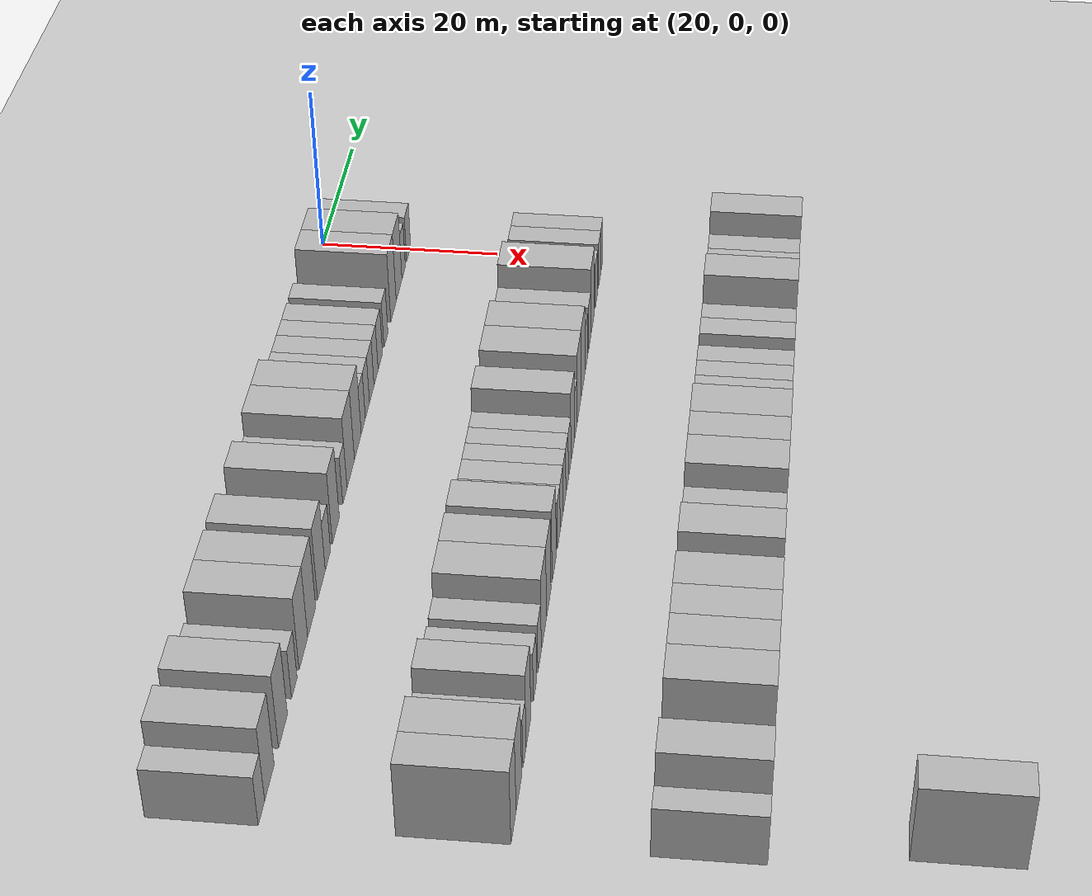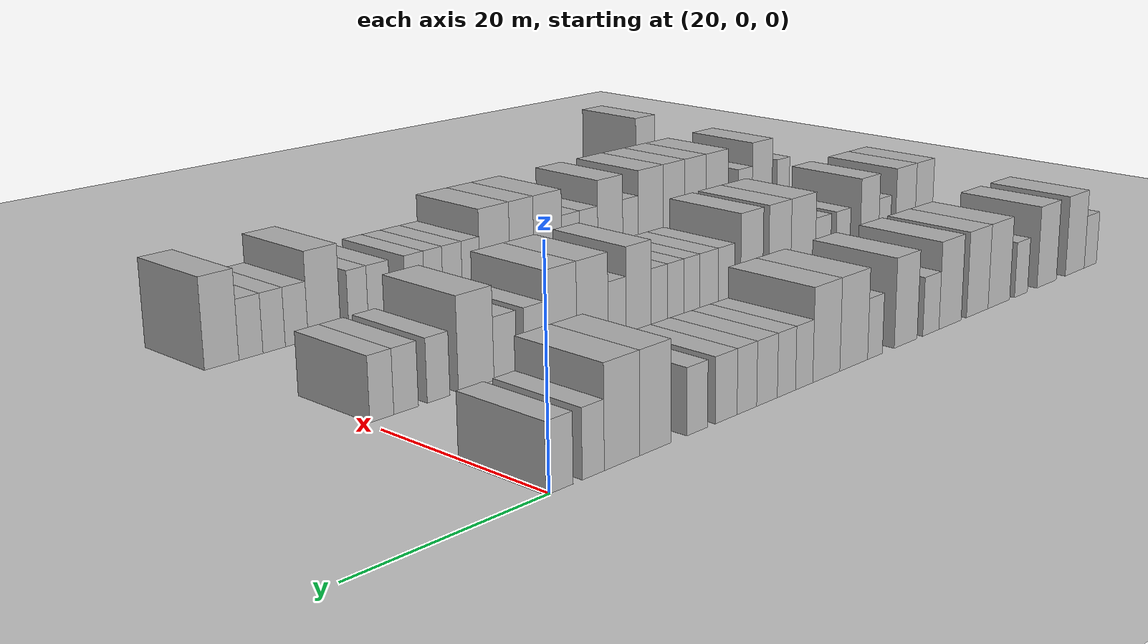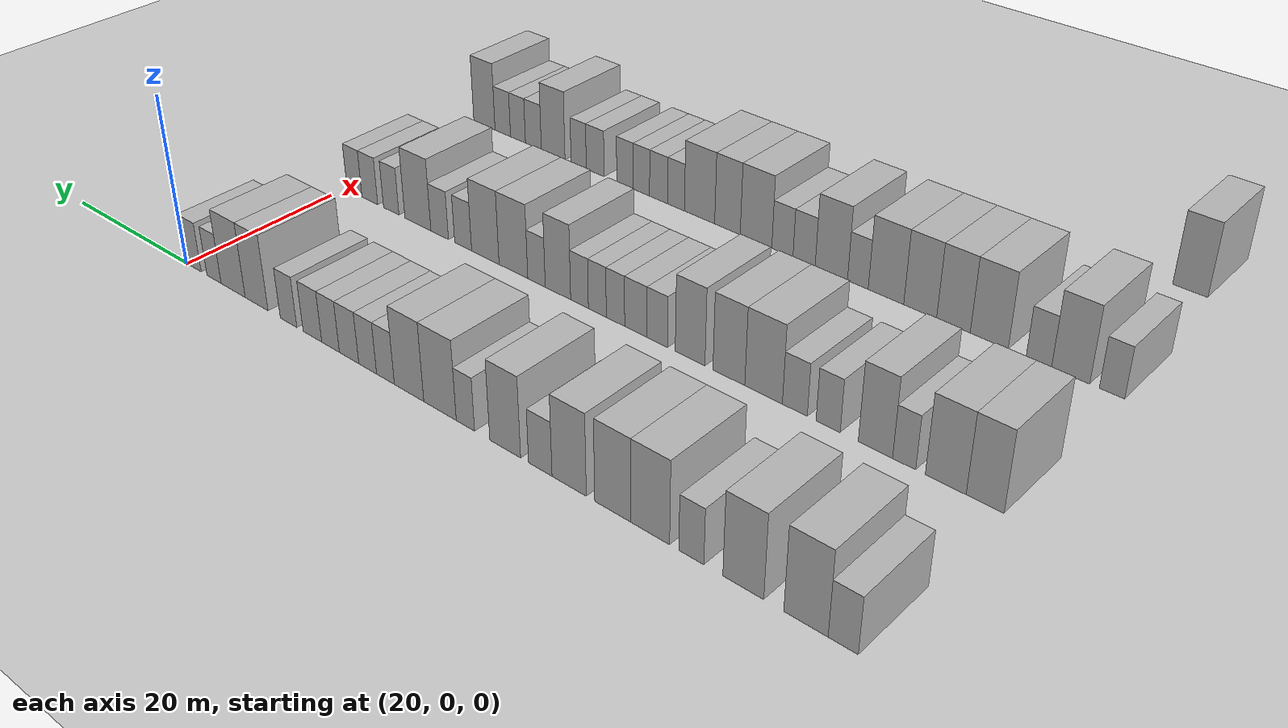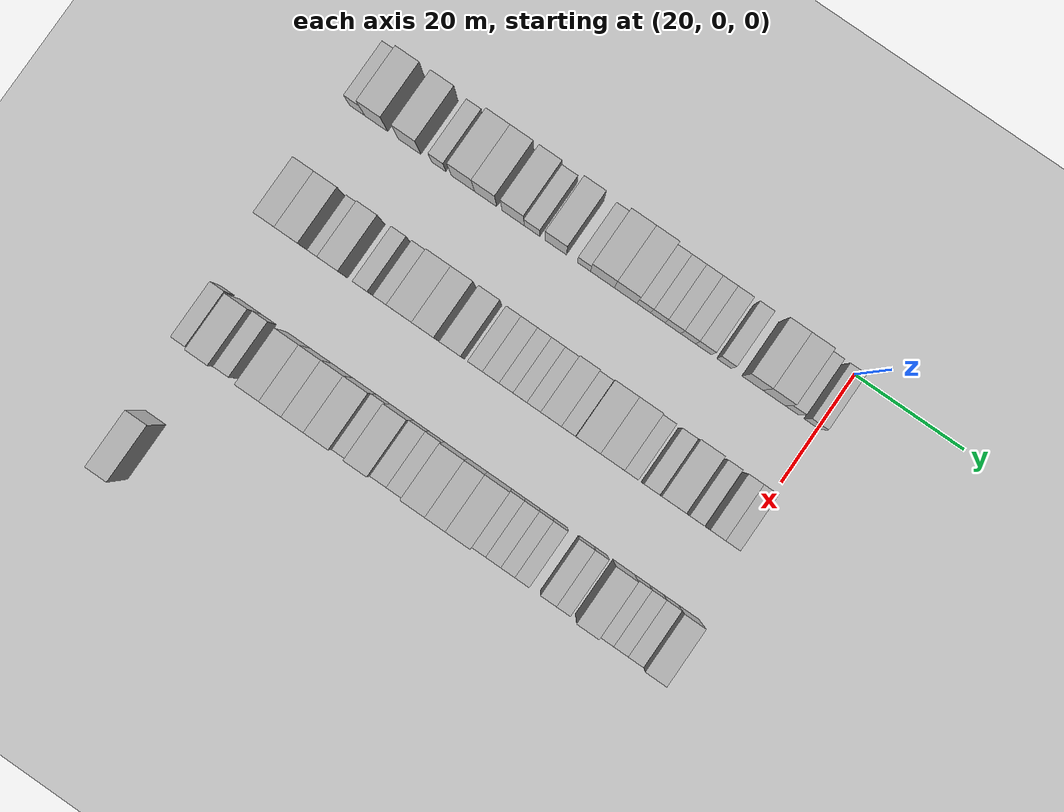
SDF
<sdf version="1.6">
 <world name="default">
  <include><name>ground_plane_1</name><uri>model://HANNAS_ground_plane</uri></include>
  <model name="building_71">
   <static>1</static>
   <pose>25.0000 -85.5744 0 0.000000 0.000000 0.000000</pose>
   <link name="link">
    <pose>0 0 3.00 0 0 0</pose>
    <collision name="collision"><geometry><box><size>10.0000 2.8453 6.0000</size></box></geometry></collision>
    <visual name="visual">
     <cast_shadows>0</cast_shadows>
     <geometry><box><size>10.0000 2.8453 6.0000</size></box></geometry>
     <material>
      <script>
       <uri>model://HANNAS_wall/materials/scripts</uri>
       <uri>model://HANNAS_wall/materials/textures</uri>
       <name>vrc/HANNAS_wall</name>
      </script>
     </material>
    </visual>
   </link>
  </model>
  <model name="building_72">
   <static>1</static>
   <pose>25.0000 -81.9981 0 0.000000 0.000000 0.000000</pose>
   <link name="link">
    <pose>0 0 4.50 0 0 0</pose>
    <collision name="collision"><geometry><box><size>10.0000 4.3073 9.0000</size></box></geometry></collision>
    <visual name="visual">
     <cast_shadows>0</cast_shadows>
     <geometry><box><size>10.0000 4.3073 9.0000</size></box></geometry>
     <material>
      <script>
       <uri>model://HANNAS_wall/materials/scripts</uri>
       <uri>model://HANNAS_wall/materials/textures</uri>
       <name>vrc/HANNAS_wall</name>
      </script>
     </material>
    </visual>
   </link>
  </model>
  <model name="building_73">
   <static>1</static>
   <pose>25.0000 -75.7421 0 0.000000 0.000000 0.000000</pose>
   <link name="link">
    <pose>0 0 4.50 0 0 0</pose>
    <collision name="collision"><geometry><box><size>10.0000 4.2046 9.0000</size></box></geometry></collision>
    <visual name="visual">
     <cast_shadows>0</cast_shadows>
     <geometry><box><size>10.0000 4.2046 9.0000</size></box></geometry>
     <material>
      <script>
       <uri>model://HANNAS_wall/materials/scripts</uri>
       <uri>model://HANNAS_wall/materials/textures</uri>
       <name>vrc/HANNAS_wall</name>
      </script>
     </material>
    </visual>
   </link>
  </model>
  <model name="building_74">
   <static>1</static>
   <pose>25.0000 -70.2906 0 0.000000 0.000000 0.000000</pose>
   <link name="link">
    <pose>0 0 3.00 0 0 0</pose>
    <collision name="collision"><geometry><box><size>10.0000 2.6985 6.0000</size></box></geometry></collision>
    <visual name="visual">
     <cast_shadows>0</cast_shadows>
     <geometry><box><size>10.0000 2.6985 6.0000</size></box></geometry>
     <material>
      <script>
       <uri>model://HANNAS_wall/materials/scripts</uri>
       <uri>model://HANNAS_wall/materials/textures</uri>
       <name>vrc/HANNAS_wall</name>
      </script>
     </material>
    </visual>
   </link>
  </model>
  <model name="building_75">
   <static>1</static>
   <pose>25.0000 -65.7738 0 0.000000 0.000000 0.000000</pose>
   <link name="link">
    <pose>0 0 4.50 0 0 0</pose>
    <collision name="collision"><geometry><box><size>10.0000 4.3351 9.0000</size></box></geometry></collision>
    <visual name="visual">
     <cast_shadows>0</cast_shadows>
     <geometry><box><size>10.0000 4.3351 9.0000</size></box></geometry>
     <material>
      <script>
       <uri>model://HANNAS_wall/materials/scripts</uri>
       <uri>model://HANNAS_wall/materials/textures</uri>
       <name>vrc/HANNAS_wall</name>
      </script>
     </material>
    </visual>
   </link>
  </model>
  <model name="building_76">
   <static>1</static>
   <pose>25.0000 -61.5246 0 0.000000 0.000000 0.000000</pose>
   <link name="link">
    <pose>0 0 4.50 0 0 0</pose>
    <collision name="collision"><geometry><box><size>10.0000 4.1635 9.0000</size></box></geometry></collision>
    <visual name="visual">
     <cast_shadows>0</cast_shadows>
     <geometry><box><size>10.0000 4.1635 9.0000</size></box></geometry>
     <material>
      <script>
       <uri>model://HANNAS_wall/materials/scripts</uri>
       <uri>model://HANNAS_wall/materials/textures</uri>
       <name>vrc/HANNAS_wall</name>
      </script>
     </material>
    </visual>
   </link>
  </model>
  <model name="building_77">
   <static>1</static>
   <pose>25.0000 -56.3787 0 0.000000 0.000000 0.000000</pose>
   <link name="link">
    <pose>0 0 4.50 0 0 0</pose>
    <collision name="collision"><geometry><box><size>10.0000 4.1282 9.0000</size></box></geometry></collision>
    <visual name="visual">
     <cast_shadows>0</cast_shadows>
     <geometry><box><size>10.0000 4.1282 9.0000</size></box></geometry>
     <material>
      <script>
       <uri>model://HANNAS_wall/materials/scripts</uri>
       <uri>model://HANNAS_wall/materials/textures</uri>
       <name>vrc/HANNAS_wall</name>
      </script>
     </material>
    </visual>
   </link>
  </model>
  <model name="building_78">
   <static>1</static>
   <pose>25.0000 -52.8615 0 0.000000 0.000000 0.000000</pose>
   <link name="link">
    <pose>0 0 3.00 0 0 0</pose>
    <collision name="collision"><geometry><box><size>10.0000 2.9062 6.0000</size></box></geometry></collision>
    <visual name="visual">
     <cast_shadows>0</cast_shadows>
     <geometry><box><size>10.0000 2.9062 6.0000</size></box></geometry>
     <material>
      <script>
       <uri>model://HANNAS_wall/materials/scripts</uri>
       <uri>model://HANNAS_wall/materials/textures</uri>
       <name>vrc/HANNAS_wall</name>
      </script>
     </material>
    </visual>
   </link>
  </model>
  <model name="building_79">
   <static>1</static>
   <pose>25.0000 -48.4329 0 0.000000 0.000000 0.000000</pose>
   <link name="link">
    <pose>0 0 4.50 0 0 0</pose>
    <collision name="collision"><geometry><box><size>10.0000 3.9510 9.0000</size></box></geometry></collision>
    <visual name="visual">
     <cast_shadows>0</cast_shadows>
     <geometry><box><size>10.0000 3.9510 9.0000</size></box></geometry>
     <material>
      <script>
       <uri>model://HANNAS_wall/materials/scripts</uri>
       <uri>model://HANNAS_wall/materials/textures</uri>
       <name>vrc/HANNAS_wall</name>
      </script>
     </material>
    </visual>
   </link>
  </model>
  <model name="building_80">
   <static>1</static>
   <pose>25.0000 -43.2373 0 0.000000 0.000000 0.000000</pose>
   <link name="link">
    <pose>0 0 3.00 0 0 0</pose>
    <collision name="collision"><geometry><box><size>10.0000 2.4401 6.0000</size></box></geometry></collision>
    <visual name="visual">
     <cast_shadows>0</cast_shadows>
     <geometry><box><size>10.0000 2.4401 6.0000</size></box></geometry>
     <material>
      <script>
       <uri>model://HANNAS_wall/materials/scripts</uri>
       <uri>model://HANNAS_wall/materials/textures</uri>
       <name>vrc/HANNAS_wall</name>
      </script>
     </material>
    </visual>
   </link>
  </model>
  <model name="building_81">
   <static>1</static>
   <pose>25.0000 -39.7944 0 0.000000 0.000000 0.000000</pose>
   <link name="link">
    <pose>0 0 4.50 0 0 0</pose>
    <collision name="collision"><geometry><box><size>10.0000 4.4456 9.0000</size></box></geometry></collision>
    <visual name="visual">
     <cast_shadows>0</cast_shadows>
     <geometry><box><size>10.0000 4.4456 9.0000</size></box></geometry>
     <material>
      <script>
       <uri>model://HANNAS_wall/materials/scripts</uri>
       <uri>model://HANNAS_wall/materials/textures</uri>
       <name>vrc/HANNAS_wall</name>
      </script>
     </material>
    </visual>
   </link>
  </model>
  <model name="building_82">
   <static>1</static>
   <pose>25.0000 -35.4935 0 0.000000 0.000000 0.000000</pose>
   <link name="link">
    <pose>0 0 4.50 0 0 0</pose>
    <collision name="collision"><geometry><box><size>10.0000 4.1563 9.0000</size></box></geometry></collision>
    <visual name="visual">
     <cast_shadows>0</cast_shadows>
     <geometry><box><size>10.0000 4.1563 9.0000</size></box></geometry>
     <material>
      <script>
       <uri>model://HANNAS_wall/materials/scripts</uri>
       <uri>model://HANNAS_wall/materials/textures</uri>
       <name>vrc/HANNAS_wall</name>
      </script>
     </material>
    </visual>
   </link>
  </model>
  <model name="building_83">
   <static>1</static>
   <pose>25.0000 -32.1264 0 0.000000 0.000000 0.000000</pose>
   <link name="link">
    <pose>0 0 3.00 0 0 0</pose>
    <collision name="collision"><geometry><box><size>10.0000 2.5778 6.0000</size></box></geometry></collision>
    <visual name="visual">
     <cast_shadows>0</cast_shadows>
     <geometry><box><size>10.0000 2.5778 6.0000</size></box></geometry>
     <material>
      <script>
       <uri>model://HANNAS_wall/materials/scripts</uri>
       <uri>model://HANNAS_wall/materials/textures</uri>
       <name>vrc/HANNAS_wall</name>
      </script>
     </material>
    </visual>
   </link>
  </model>
  <model name="building_84">
   <static>1</static>
   <pose>25.0000 -29.5190 0 0.000000 0.000000 0.000000</pose>
   <link name="link">
    <pose>0 0 3.00 0 0 0</pose>
    <collision name="collision"><geometry><box><size>10.0000 2.6370 6.0000</size></box></geometry></collision>
    <visual name="visual">
     <cast_shadows>0</cast_shadows>
     <geometry><box><size>10.0000 2.6370 6.0000</size></box></geometry>
     <material>
      <script>
       <uri>model://HANNAS_wall/materials/scripts</uri>
       <uri>model://HANNAS_wall/materials/textures</uri>
       <name>vrc/HANNAS_wall</name>
      </script>
     </material>
    </visual>
   </link>
  </model>
  <model name="building_85">
   <static>1</static>
   <pose>25.0000 -26.7418 0 0.000000 0.000000 0.000000</pose>
   <link name="link">
    <pose>0 0 3.00 0 0 0</pose>
    <collision name="collision"><geometry><box><size>10.0000 2.9174 6.0000</size></box></geometry></collision>
    <visual name="visual">
     <cast_shadows>0</cast_shadows>
     <geometry><box><size>10.0000 2.9174 6.0000</size></box></geometry>
     <material>
      <script>
       <uri>model://HANNAS_wall/materials/scripts</uri>
       <uri>model://HANNAS_wall/materials/textures</uri>
       <name>vrc/HANNAS_wall</name>
      </script>
     </material>
    </visual>
   </link>
  </model>
  <model name="building_86">
   <static>1</static>
   <pose>25.0000 -23.9332 0 0.000000 0.000000 0.000000</pose>
   <link name="link">
    <pose>0 0 3.00 0 0 0</pose>
    <collision name="collision"><geometry><box><size>10.0000 2.6997 6.0000</size></box></geometry></collision>
    <visual name="visual">
     <cast_shadows>0</cast_shadows>
     <geometry><box><size>10.0000 2.6997 6.0000</size></box></geometry>
     <material>
      <script>
       <uri>model://HANNAS_wall/materials/scripts</uri>
       <uri>model://HANNAS_wall/materials/textures</uri>
       <name>vrc/HANNAS_wall</name>
      </script>
     </material>
    </visual>
   </link>
  </model>
  <model name="building_87">
   <static>1</static>
   <pose>25.0000 -21.1210 0 0.000000 0.000000 0.000000</pose>
   <link name="link">
    <pose>0 0 3.00 0 0 0</pose>
    <collision name="collision"><geometry><box><size>10.0000 2.9246 6.0000</size></box></geometry></collision>
    <visual name="visual">
     <cast_shadows>0</cast_shadows>
     <geometry><box><size>10.0000 2.9246 6.0000</size></box></geometry>
     <material>
      <script>
       <uri>model://HANNAS_wall/materials/scripts</uri>
       <uri>model://HANNAS_wall/materials/textures</uri>
       <name>vrc/HANNAS_wall</name>
      </script>
     </material>
    </visual>
   </link>
  </model>
  <model name="building_88">
   <static>1</static>
   <pose>25.0000 -17.3286 0 0.000000 0.000000 0.000000</pose>
   <link name="link">
    <pose>0 0 3.00 0 0 0</pose>
    <collision name="collision"><geometry><box><size>10.0000 2.6602 6.0000</size></box></geometry></collision>
    <visual name="visual">
     <cast_shadows>0</cast_shadows>
     <geometry><box><size>10.0000 2.6602 6.0000</size></box></geometry>
     <material>
      <script>
       <uri>model://HANNAS_wall/materials/scripts</uri>
       <uri>model://HANNAS_wall/materials/textures</uri>
       <name>vrc/HANNAS_wall</name>
      </script>
     </material>
    </visual>
   </link>
  </model>
  <model name="building_89">
   <static>1</static>
   <pose>25.0000 -12.0951 0 0.000000 0.000000 0.000000</pose>
   <link name="link">
    <pose>0 0 4.50 0 0 0</pose>
    <collision name="collision"><geometry><box><size>10.0000 3.8069 9.0000</size></box></geometry></collision>
    <visual name="visual">
     <cast_shadows>0</cast_shadows>
     <geometry><box><size>10.0000 3.8069 9.0000</size></box></geometry>
     <material>
      <script>
       <uri>model://HANNAS_wall/materials/scripts</uri>
       <uri>model://HANNAS_wall/materials/textures</uri>
       <name>vrc/HANNAS_wall</name>
      </script>
     </material>
    </visual>
   </link>
  </model>
  <model name="building_90">
   <static>1</static>
   <pose>25.0000 -8.1276 0 0.000000 0.000000 0.000000</pose>
   <link name="link">
    <pose>0 0 4.50 0 0 0</pose>
    <collision name="collision"><geometry><box><size>10.0000 4.1280 9.0000</size></box></geometry></collision>
    <visual name="visual">
     <cast_shadows>0</cast_shadows>
     <geometry><box><size>10.0000 4.1280 9.0000</size></box></geometry>
     <material>
      <script>
       <uri>model://HANNAS_wall/materials/scripts</uri>
       <uri>model://HANNAS_wall/materials/textures</uri>
       <name>vrc/HANNAS_wall</name>
      </script>
     </material>
    </visual>
   </link>
  </model>
  <model name="building_91">
   <static>1</static>
   <pose>25.0000 -4.8198 0 0.000000 0.000000 0.000000</pose>
   <link name="link">
    <pose>0 0 3.00 0 0 0</pose>
    <collision name="collision"><geometry><box><size>10.0000 2.4877 6.0000</size></box></geometry></collision>
    <visual name="visual">
     <cast_shadows>0</cast_shadows>
     <geometry><box><size>10.0000 2.4877 6.0000</size></box></geometry>
     <material>
      <script>
       <uri>model://HANNAS_wall/materials/scripts</uri>
       <uri>model://HANNAS_wall/materials/textures</uri>
       <name>vrc/HANNAS_wall</name>
      </script>
     </material>
    </visual>
   </link>
  </model>
  <model name="building_92">
   <static>1</static>
   <pose>25.0000 -1.1190 0 0.000000 0.000000 0.000000</pose>
   <link name="link">
    <pose>0 0 3.00 0 0 0</pose>
    <collision name="collision"><geometry><box><size>10.0000 2.9141 6.0000</size></box></geometry></collision>
    <visual name="visual">
     <cast_shadows>0</cast_shadows>
     <geometry><box><size>10.0000 2.9141 6.0000</size></box></geometry>
     <material>
      <script>
       <uri>model://HANNAS_wall/materials/scripts</uri>
       <uri>model://HANNAS_wall/materials/textures</uri>
       <name>vrc/HANNAS_wall</name>
      </script>
     </material>
    </visual>
   </link>
  </model>
  <model name="building_261">
   <static>1</static>
   <pose>47.0000 -85.1181 0 0.000000 0.000000 0.000000</pose>
   <link name="link">
    <pose>0 0 4.50 0 0 0</pose>
    <collision name="collision"><geometry><box><size>10.0000 3.7637 9.0000</size></box></geometry></collision>
    <visual name="visual">
     <cast_shadows>0</cast_shadows>
     <geometry><box><size>10.0000 3.7637 9.0000</size></box></geometry>
     <material>
      <script>
       <uri>model://HANNAS_wall/materials/scripts</uri>
       <uri>model://HANNAS_wall/materials/textures</uri>
       <name>vrc/HANNAS_wall</name>
      </script>
     </material>
    </visual>
   </link>
  </model>
  <model name="building_262">
   <static>1</static>
   <pose>47.0000 -81.1468 0 0.000000 0.000000 0.000000</pose>
   <link name="link">
    <pose>0 0 4.50 0 0 0</pose>
    <collision name="collision"><geometry><box><size>10.0000 4.1789 9.0000</size></box></geometry></collision>
    <visual name="visual">
     <cast_shadows>0</cast_shadows>
     <geometry><box><size>10.0000 4.1789 9.0000</size></box></geometry>
     <material>
      <script>
       <uri>model://HANNAS_wall/materials/scripts</uri>
       <uri>model://HANNAS_wall/materials/textures</uri>
       <name>vrc/HANNAS_wall</name>
      </script>
     </material>
    </visual>
   </link>
  </model>
  <model name="building_263">
   <static>1</static>
   <pose>47.0000 -76.8328 0 0.000000 0.000000 0.000000</pose>
   <link name="link">
    <pose>0 0 3.00 0 0 0</pose>
    <collision name="collision"><geometry><box><size>10.0000 2.4491 6.0000</size></box></geometry></collision>
    <visual name="visual">
     <cast_shadows>0</cast_shadows>
     <geometry><box><size>10.0000 2.4491 6.0000</size></box></geometry>
     <material>
      <script>
       <uri>model://HANNAS_wall/materials/scripts</uri>
       <uri>model://HANNAS_wall/materials/textures</uri>
       <name>vrc/HANNAS_wall</name>
      </script>
     </material>
    </visual>
   </link>
  </model>
  <model name="building_264">
   <static>1</static>
   <pose>47.0000 -73.7501 0 0.000000 0.000000 0.000000</pose>
   <link name="link">
    <pose>0 0 4.50 0 0 0</pose>
    <collision name="collision"><geometry><box><size>10.0000 3.7163 9.0000</size></box></geometry></collision>
    <visual name="visual">
     <cast_shadows>0</cast_shadows>
     <geometry><box><size>10.0000 3.7163 9.0000</size></box></geometry>
     <material>
      <script>
       <uri>model://HANNAS_wall/materials/scripts</uri>
       <uri>model://HANNAS_wall/materials/textures</uri>
       <name>vrc/HANNAS_wall</name>
      </script>
     </material>
    </visual>
   </link>
  </model>
  <model name="building_265">
   <static>1</static>
   <pose>47.0000 -68.5322 0 0.000000 0.000000 0.000000</pose>
   <link name="link">
    <pose>0 0 3.00 0 0 0</pose>
    <collision name="collision"><geometry><box><size>10.0000 2.7195 6.0000</size></box></geometry></collision>
    <visual name="visual">
     <cast_shadows>0</cast_shadows>
     <geometry><box><size>10.0000 2.7195 6.0000</size></box></geometry>
     <material>
      <script>
       <uri>model://HANNAS_wall/materials/scripts</uri>
       <uri>model://HANNAS_wall/materials/textures</uri>
       <name>vrc/HANNAS_wall</name>
      </script>
     </material>
    </visual>
   </link>
  </model>
  <model name="building_266">
   <static>1</static>
   <pose>47.0000 -64.7271 0 0.000000 0.000000 0.000000</pose>
   <link name="link">
    <pose>0 0 3.00 0 0 0</pose>
    <collision name="collision"><geometry><box><size>10.0000 2.8907 6.0000</size></box></geometry></collision>
    <visual name="visual">
     <cast_shadows>0</cast_shadows>
     <geometry><box><size>10.0000 2.8907 6.0000</size></box></geometry>
     <material>
      <script>
       <uri>model://HANNAS_wall/materials/scripts</uri>
       <uri>model://HANNAS_wall/materials/textures</uri>
       <name>vrc/HANNAS_wall</name>
      </script>
     </material>
    </visual>
   </link>
  </model>
  <model name="building_267">
   <static>1</static>
   <pose>47.0000 -61.0425 0 0.000000 0.000000 0.000000</pose>
   <link name="link">
    <pose>0 0 4.50 0 0 0</pose>
    <collision name="collision"><geometry><box><size>10.0000 4.4786 9.0000</size></box></geometry></collision>
    <visual name="visual">
     <cast_shadows>0</cast_shadows>
     <geometry><box><size>10.0000 4.4786 9.0000</size></box></geometry>
     <material>
      <script>
       <uri>model://HANNAS_wall/materials/scripts</uri>
       <uri>model://HANNAS_wall/materials/textures</uri>
       <name>vrc/HANNAS_wall</name>
      </script>
     </material>
    </visual>
   </link>
  </model>
  <model name="building_268">
   <static>1</static>
   <pose>47.0000 -56.8417 0 0.000000 0.000000 0.000000</pose>
   <link name="link">
    <pose>0 0 4.50 0 0 0</pose>
    <collision name="collision"><geometry><box><size>10.0000 3.9229 9.0000</size></box></geometry></collision>
    <visual name="visual">
     <cast_shadows>0</cast_shadows>
     <geometry><box><size>10.0000 3.9229 9.0000</size></box></geometry>
     <material>
      <script>
       <uri>model://HANNAS_wall/materials/scripts</uri>
       <uri>model://HANNAS_wall/materials/textures</uri>
       <name>vrc/HANNAS_wall</name>
      </script>
     </material>
    </visual>
   </link>
  </model>
  <model name="building_269">
   <static>1</static>
   <pose>47.0000 -51.9926 0 0.000000 0.000000 0.000000</pose>
   <link name="link">
    <pose>0 0 4.50 0 0 0</pose>
    <collision name="collision"><geometry><box><size>10.0000 3.7755 9.0000</size></box></geometry></collision>
    <visual name="visual">
     <cast_shadows>0</cast_shadows>
     <geometry><box><size>10.0000 3.7755 9.0000</size></box></geometry>
     <material>
      <script>
       <uri>model://HANNAS_wall/materials/scripts</uri>
       <uri>model://HANNAS_wall/materials/textures</uri>
       <name>vrc/HANNAS_wall</name>
      </script>
     </material>
    </visual>
   </link>
  </model>
  <model name="building_270">
   <static>1</static>
   <pose>47.0000 -47.7576 0 0.000000 0.000000 0.000000</pose>
   <link name="link">
    <pose>0 0 3.00 0 0 0</pose>
    <collision name="collision"><geometry><box><size>10.0000 2.6945 6.0000</size></box></geometry></collision>
    <visual name="visual">
     <cast_shadows>0</cast_shadows>
     <geometry><box><size>10.0000 2.6945 6.0000</size></box></geometry>
     <material>
      <script>
       <uri>model://HANNAS_wall/materials/scripts</uri>
       <uri>model://HANNAS_wall/materials/textures</uri>
       <name>vrc/HANNAS_wall</name>
      </script>
     </material>
    </visual>
   </link>
  </model>
  <model name="building_271">
   <static>1</static>
   <pose>47.0000 -44.9195 0 0.000000 0.000000 0.000000</pose>
   <link name="link">
    <pose>0 0 3.00 0 0 0</pose>
    <collision name="collision"><geometry><box><size>10.0000 2.9817 6.0000</size></box></geometry></collision>
    <visual name="visual">
     <cast_shadows>0</cast_shadows>
     <geometry><box><size>10.0000 2.9817 6.0000</size></box></geometry>
     <material>
      <script>
       <uri>model://HANNAS_wall/materials/scripts</uri>
       <uri>model://HANNAS_wall/materials/textures</uri>
       <name>vrc/HANNAS_wall</name>
      </script>
     </material>
    </visual>
   </link>
  </model>
  <model name="building_272">
   <static>1</static>
   <pose>47.0000 -42.1758 0 0.000000 0.000000 0.000000</pose>
   <link name="link">
    <pose>0 0 3.00 0 0 0</pose>
    <collision name="collision"><geometry><box><size>10.0000 2.5056 6.0000</size></box></geometry></collision>
    <visual name="visual">
     <cast_shadows>0</cast_shadows>
     <geometry><box><size>10.0000 2.5056 6.0000</size></box></geometry>
     <material>
      <script>
       <uri>model://HANNAS_wall/materials/scripts</uri>
       <uri>model://HANNAS_wall/materials/textures</uri>
       <name>vrc/HANNAS_wall</name>
      </script>
     </material>
    </visual>
   </link>
  </model>
  <model name="building_273">
   <static>1</static>
   <pose>47.0000 -39.6827 0 0.000000 0.000000 0.000000</pose>
   <link name="link">
    <pose>0 0 3.00 0 0 0</pose>
    <collision name="collision"><geometry><box><size>10.0000 2.4806 6.0000</size></box></geometry></collision>
    <visual name="visual">
     <cast_shadows>0</cast_shadows>
     <geometry><box><size>10.0000 2.4806 6.0000</size></box></geometry>
     <material>
      <script>
       <uri>model://HANNAS_wall/materials/scripts</uri>
       <uri>model://HANNAS_wall/materials/textures</uri>
       <name>vrc/HANNAS_wall</name>
      </script>
     </material>
    </visual>
   </link>
  </model>
  <model name="building_274">
   <static>1</static>
   <pose>47.0000 -37.1938 0 0.000000 0.000000 0.000000</pose>
   <link name="link">
    <pose>0 0 3.00 0 0 0</pose>
    <collision name="collision"><geometry><box><size>10.0000 2.4974 6.0000</size></box></geometry></collision>
    <visual name="visual">
     <cast_shadows>0</cast_shadows>
     <geometry><box><size>10.0000 2.4974 6.0000</size></box></geometry>
     <material>
      <script>
       <uri>model://HANNAS_wall/materials/scripts</uri>
       <uri>model://HANNAS_wall/materials/textures</uri>
       <name>vrc/HANNAS_wall</name>
      </script>
     </material>
    </visual>
   </link>
  </model>
  <model name="building_275">
   <static>1</static>
   <pose>47.0000 -34.1157 0 0.000000 0.000000 0.000000</pose>
   <link name="link">
    <pose>0 0 4.50 0 0 0</pose>
    <collision name="collision"><geometry><box><size>10.0000 3.6586 9.0000</size></box></geometry></collision>
    <visual name="visual">
     <cast_shadows>0</cast_shadows>
     <geometry><box><size>10.0000 3.6586 9.0000</size></box></geometry>
     <material>
      <script>
       <uri>model://HANNAS_wall/materials/scripts</uri>
       <uri>model://HANNAS_wall/materials/textures</uri>
       <name>vrc/HANNAS_wall</name>
      </script>
     </material>
    </visual>
   </link>
  </model>
  <model name="building_276">
   <static>1</static>
   <pose>47.0000 -31.0033 0 0.000000 0.000000 0.000000</pose>
   <link name="link">
    <pose>0 0 3.00 0 0 0</pose>
    <collision name="collision"><geometry><box><size>10.0000 2.5662 6.0000</size></box></geometry></collision>
    <visual name="visual">
     <cast_shadows>0</cast_shadows>
     <geometry><box><size>10.0000 2.5662 6.0000</size></box></geometry>
     <material>
      <script>
       <uri>model://HANNAS_wall/materials/scripts</uri>
       <uri>model://HANNAS_wall/materials/textures</uri>
       <name>vrc/HANNAS_wall</name>
      </script>
     </material>
    </visual>
   </link>
  </model>
  <model name="building_277">
   <static>1</static>
   <pose>47.0000 -27.5591 0 0.000000 0.000000 0.000000</pose>
   <link name="link">
    <pose>0 0 4.50 0 0 0</pose>
    <collision name="collision"><geometry><box><size>10.0000 4.3224 9.0000</size></box></geometry></collision>
    <visual name="visual">
     <cast_shadows>0</cast_shadows>
     <geometry><box><size>10.0000 4.3224 9.0000</size></box></geometry>
     <material>
      <script>
       <uri>model://HANNAS_wall/materials/scripts</uri>
       <uri>model://HANNAS_wall/materials/textures</uri>
       <name>vrc/HANNAS_wall</name>
      </script>
     </material>
    </visual>
   </link>
  </model>
  <model name="building_278">
   <static>1</static>
   <pose>47.0000 -23.2790 0 0.000000 0.000000 0.000000</pose>
   <link name="link">
    <pose>0 0 4.50 0 0 0</pose>
    <collision name="collision"><geometry><box><size>10.0000 4.2378 9.0000</size></box></geometry></collision>
    <visual name="visual">
     <cast_shadows>0</cast_shadows>
     <geometry><box><size>10.0000 4.2378 9.0000</size></box></geometry>
     <material>
      <script>
       <uri>model://HANNAS_wall/materials/scripts</uri>
       <uri>model://HANNAS_wall/materials/textures</uri>
       <name>vrc/HANNAS_wall</name>
      </script>
     </material>
    </visual>
   </link>
  </model>
  <model name="building_279">
   <static>1</static>
   <pose>47.0000 -19.8201 0 0.000000 0.000000 0.000000</pose>
   <link name="link">
    <pose>0 0 3.00 0 0 0</pose>
    <collision name="collision"><geometry><box><size>10.0000 2.6801 6.0000</size></box></geometry></collision>
    <visual name="visual">
     <cast_shadows>0</cast_shadows>
     <geometry><box><size>10.0000 2.6801 6.0000</size></box></geometry>
     <material>
      <script>
       <uri>model://HANNAS_wall/materials/scripts</uri>
       <uri>model://HANNAS_wall/materials/textures</uri>
       <name>vrc/HANNAS_wall</name>
      </script>
     </material>
    </visual>
   </link>
  </model>
  <model name="building_280">
   <static>1</static>
   <pose>47.0000 -16.0602 0 0.000000 0.000000 0.000000</pose>
   <link name="link">
    <pose>0 0 3.00 0 0 0</pose>
    <collision name="collision"><geometry><box><size>10.0000 2.8396 6.0000</size></box></geometry></collision>
    <visual name="visual">
     <cast_shadows>0</cast_shadows>
     <geometry><box><size>10.0000 2.8396 6.0000</size></box></geometry>
     <material>
      <script>
       <uri>model://HANNAS_wall/materials/scripts</uri>
       <uri>model://HANNAS_wall/materials/textures</uri>
       <name>vrc/HANNAS_wall</name>
      </script>
     </material>
    </visual>
   </link>
  </model>
  <model name="building_281">
   <static>1</static>
   <pose>47.0000 -12.4890 0 0.000000 0.000000 0.000000</pose>
   <link name="link">
    <pose>0 0 4.50 0 0 0</pose>
    <collision name="collision"><geometry><box><size>10.0000 4.3029 9.0000</size></box></geometry></collision>
    <visual name="visual">
     <cast_shadows>0</cast_shadows>
     <geometry><box><size>10.0000 4.3029 9.0000</size></box></geometry>
     <material>
      <script>
       <uri>model://HANNAS_wall/materials/scripts</uri>
       <uri>model://HANNAS_wall/materials/textures</uri>
       <name>vrc/HANNAS_wall</name>
      </script>
     </material>
    </visual>
   </link>
  </model>
  <model name="building_282">
   <static>1</static>
   <pose>47.0000 -8.0232 0 0.000000 0.000000 0.000000</pose>
   <link name="link">
    <pose>0 0 3.00 0 0 0</pose>
    <collision name="collision"><geometry><box><size>10.0000 2.6288 6.0000</size></box></geometry></collision>
    <visual name="visual">
     <cast_shadows>0</cast_shadows>
     <geometry><box><size>10.0000 2.6288 6.0000</size></box></geometry>
     <material>
      <script>
       <uri>model://HANNAS_wall/materials/scripts</uri>
       <uri>model://HANNAS_wall/materials/textures</uri>
       <name>vrc/HANNAS_wall</name>
      </script>
     </material>
    </visual>
   </link>
  </model>
  <model name="building_283">
   <static>1</static>
   <pose>47.0000 -4.3360 0 0.000000 0.000000 0.000000</pose>
   <link name="link">
    <pose>0 0 3.00 0 0 0</pose>
    <collision name="collision"><geometry><box><size>10.0000 2.7457 6.0000</size></box></geometry></collision>
    <visual name="visual">
     <cast_shadows>0</cast_shadows>
     <geometry><box><size>10.0000 2.7457 6.0000</size></box></geometry>
     <material>
      <script>
       <uri>model://HANNAS_wall/materials/scripts</uri>
       <uri>model://HANNAS_wall/materials/textures</uri>
       <name>vrc/HANNAS_wall</name>
      </script>
     </material>
    </visual>
   </link>
  </model>
  <model name="building_284">
   <static>1</static>
   <pose>47.0000 -1.6566 0 0.000000 0.000000 0.000000</pose>
   <link name="link">
    <pose>0 0 3.00 0 0 0</pose>
    <collision name="collision"><geometry><box><size>10.0000 2.6131 6.0000</size></box></geometry></collision>
    <visual name="visual">
     <cast_shadows>0</cast_shadows>
     <geometry><box><size>10.0000 2.6131 6.0000</size></box></geometry>
     <material>
      <script>
       <uri>model://HANNAS_wall/materials/scripts</uri>
       <uri>model://HANNAS_wall/materials/textures</uri>
       <name>vrc/HANNAS_wall</name>
      </script>
     </material>
    </visual>
   </link>
  </model>
  <model name="building_460">
   <static>1</static>
   <pose>69.0000 -85.8655 0 0.000000 0.000000 0.000000</pose>
   <link name="link">
    <pose>0 0 3.00 0 0 0</pose>
    <collision name="collision"><geometry><box><size>10.0000 2.6260 6.0000</size></box></geometry></collision>
    <visual name="visual">
     <cast_shadows>0</cast_shadows>
     <geometry><box><size>10.0000 2.6260 6.0000</size></box></geometry>
     <material>
      <script>
       <uri>model://HANNAS_wall/materials/scripts</uri>
       <uri>model://HANNAS_wall/materials/textures</uri>
       <name>vrc/HANNAS_wall</name>
      </script>
     </material>
    </visual>
   </link>
  </model>
  <model name="building_461">
   <static>1</static>
   <pose>69.0000 -81.5101 0 0.000000 0.000000 0.000000</pose>
   <link name="link">
    <pose>0 0 4.50 0 0 0</pose>
    <collision name="collision"><geometry><box><size>10.0000 4.0848 9.0000</size></box></geometry></collision>
    <visual name="visual">
     <cast_shadows>0</cast_shadows>
     <geometry><box><size>10.0000 4.0848 9.0000</size></box></geometry>
     <material>
      <script>
       <uri>model://HANNAS_wall/materials/scripts</uri>
       <uri>model://HANNAS_wall/materials/textures</uri>
       <name>vrc/HANNAS_wall</name>
      </script>
     </material>
    </visual>
   </link>
  </model>
  <model name="building_462">
   <static>1</static>
   <pose>69.0000 -78.0763 0 0.000000 0.000000 0.000000</pose>
   <link name="link">
    <pose>0 0 3.00 0 0 0</pose>
    <collision name="collision"><geometry><box><size>10.0000 2.7828 6.0000</size></box></geometry></collision>
    <visual name="visual">
     <cast_shadows>0</cast_shadows>
     <geometry><box><size>10.0000 2.7828 6.0000</size></box></geometry>
     <material>
      <script>
       <uri>model://HANNAS_wall/materials/scripts</uri>
       <uri>model://HANNAS_wall/materials/textures</uri>
       <name>vrc/HANNAS_wall</name>
      </script>
     </material>
    </visual>
   </link>
  </model>
  <model name="building_463">
   <static>1</static>
   <pose>69.0000 -72.5223 0 0.000000 0.000000 0.000000</pose>
   <link name="link">
    <pose>0 0 4.50 0 0 0</pose>
    <collision name="collision"><geometry><box><size>10.0000 4.3252 9.0000</size></box></geometry></collision>
    <visual name="visual">
     <cast_shadows>0</cast_shadows>
     <geometry><box><size>10.0000 4.3252 9.0000</size></box></geometry>
     <material>
      <script>
       <uri>model://HANNAS_wall/materials/scripts</uri>
       <uri>model://HANNAS_wall/materials/textures</uri>
       <name>vrc/HANNAS_wall</name>
      </script>
     </material>
    </visual>
   </link>
  </model>
  <model name="building_464">
   <static>1</static>
   <pose>69.0000 -68.3876 0 0.000000 0.000000 0.000000</pose>
   <link name="link">
    <pose>0 0 4.50 0 0 0</pose>
    <collision name="collision"><geometry><box><size>10.0000 3.9441 9.0000</size></box></geometry></collision>
    <visual name="visual">
     <cast_shadows>0</cast_shadows>
     <geometry><box><size>10.0000 3.9441 9.0000</size></box></geometry>
     <material>
      <script>
       <uri>model://HANNAS_wall/materials/scripts</uri>
       <uri>model://HANNAS_wall/materials/textures</uri>
       <name>vrc/HANNAS_wall</name>
      </script>
     </material>
    </visual>
   </link>
  </model>
  <model name="building_465">
   <static>1</static>
   <pose>69.0000 -64.4347 0 0.000000 0.000000 0.000000</pose>
   <link name="link">
    <pose>0 0 4.50 0 0 0</pose>
    <collision name="collision"><geometry><box><size>10.0000 3.9617 9.0000</size></box></geometry></collision>
    <visual name="visual">
     <cast_shadows>0</cast_shadows>
     <geometry><box><size>10.0000 3.9617 9.0000</size></box></geometry>
     <material>
      <script>
       <uri>model://HANNAS_wall/materials/scripts</uri>
       <uri>model://HANNAS_wall/materials/textures</uri>
       <name>vrc/HANNAS_wall</name>
      </script>
     </material>
    </visual>
   </link>
  </model>
  <model name="building_466">
   <static>1</static>
   <pose>69.0000 -60.2524 0 0.000000 0.000000 0.000000</pose>
   <link name="link">
    <pose>0 0 4.50 0 0 0</pose>
    <collision name="collision"><geometry><box><size>10.0000 4.4029 9.0000</size></box></geometry></collision>
    <visual name="visual">
     <cast_shadows>0</cast_shadows>
     <geometry><box><size>10.0000 4.4029 9.0000</size></box></geometry>
     <material>
      <script>
       <uri>model://HANNAS_wall/materials/scripts</uri>
       <uri>model://HANNAS_wall/materials/textures</uri>
       <name>vrc/HANNAS_wall</name>
      </script>
     </material>
    </visual>
   </link>
  </model>
  <model name="building_467">
   <static>1</static>
   <pose>69.0000 -56.7367 0 0.000000 0.000000 0.000000</pose>
   <link name="link">
    <pose>0 0 3.00 0 0 0</pose>
    <collision name="collision"><geometry><box><size>10.0000 2.6286 6.0000</size></box></geometry></collision>
    <visual name="visual">
     <cast_shadows>0</cast_shadows>
     <geometry><box><size>10.0000 2.6286 6.0000</size></box></geometry>
     <material>
      <script>
       <uri>model://HANNAS_wall/materials/scripts</uri>
       <uri>model://HANNAS_wall/materials/textures</uri>
       <name>vrc/HANNAS_wall</name>
      </script>
     </material>
    </visual>
   </link>
  </model>
  <model name="building_468">
   <static>1</static>
   <pose>69.0000 -53.3243 0 0.000000 0.000000 0.000000</pose>
   <link name="link">
    <pose>0 0 4.50 0 0 0</pose>
    <collision name="collision"><geometry><box><size>10.0000 4.1962 9.0000</size></box></geometry></collision>
    <visual name="visual">
     <cast_shadows>0</cast_shadows>
     <geometry><box><size>10.0000 4.1962 9.0000</size></box></geometry>
     <material>
      <script>
       <uri>model://HANNAS_wall/materials/scripts</uri>
       <uri>model://HANNAS_wall/materials/textures</uri>
       <name>vrc/HANNAS_wall</name>
      </script>
     </material>
    </visual>
   </link>
  </model>
  <model name="building_469">
   <static>1</static>
   <pose>69.0000 -49.7541 0 0.000000 0.000000 0.000000</pose>
   <link name="link">
    <pose>0 0 3.00 0 0 0</pose>
    <collision name="collision"><geometry><box><size>10.0000 2.9441 6.0000</size></box></geometry></collision>
    <visual name="visual">
     <cast_shadows>0</cast_shadows>
     <geometry><box><size>10.0000 2.9441 6.0000</size></box></geometry>
     <material>
      <script>
       <uri>model://HANNAS_wall/materials/scripts</uri>
       <uri>model://HANNAS_wall/materials/textures</uri>
       <name>vrc/HANNAS_wall</name>
      </script>
     </material>
    </visual>
   </link>
  </model>
  <model name="building_470">
   <static>1</static>
   <pose>69.0000 -46.8497 0 0.000000 0.000000 0.000000</pose>
   <link name="link">
    <pose>0 0 3.00 0 0 0</pose>
    <collision name="collision"><geometry><box><size>10.0000 2.8646 6.0000</size></box></geometry></collision>
    <visual name="visual">
     <cast_shadows>0</cast_shadows>
     <geometry><box><size>10.0000 2.8646 6.0000</size></box></geometry>
     <material>
      <script>
       <uri>model://HANNAS_wall/materials/scripts</uri>
       <uri>model://HANNAS_wall/materials/textures</uri>
       <name>vrc/HANNAS_wall</name>
      </script>
     </material>
    </visual>
   </link>
  </model>
  <model name="building_471">
   <static>1</static>
   <pose>69.0000 -43.2309 0 0.000000 0.000000 0.000000</pose>
   <link name="link">
    <pose>0 0 4.50 0 0 0</pose>
    <collision name="collision"><geometry><box><size>10.0000 4.3731 9.0000</size></box></geometry></collision>
    <visual name="visual">
     <cast_shadows>0</cast_shadows>
     <geometry><box><size>10.0000 4.3731 9.0000</size></box></geometry>
     <material>
      <script>
       <uri>model://HANNAS_wall/materials/scripts</uri>
       <uri>model://HANNAS_wall/materials/textures</uri>
       <name>vrc/HANNAS_wall</name>
      </script>
     </material>
    </visual>
   </link>
  </model>
  <model name="building_472">
   <static>1</static>
   <pose>69.0000 -39.2316 0 0.000000 0.000000 0.000000</pose>
   <link name="link">
    <pose>0 0 4.50 0 0 0</pose>
    <collision name="collision"><geometry><box><size>10.0000 3.6256 9.0000</size></box></geometry></collision>
    <visual name="visual">
     <cast_shadows>0</cast_shadows>
     <geometry><box><size>10.0000 3.6256 9.0000</size></box></geometry>
     <material>
      <script>
       <uri>model://HANNAS_wall/materials/scripts</uri>
       <uri>model://HANNAS_wall/materials/textures</uri>
       <name>vrc/HANNAS_wall</name>
      </script>
     </material>
    </visual>
   </link>
  </model>
  <model name="building_473">
   <static>1</static>
   <pose>69.0000 -35.2112 0 0.000000 0.000000 0.000000</pose>
   <link name="link">
    <pose>0 0 4.50 0 0 0</pose>
    <collision name="collision"><geometry><box><size>10.0000 4.4152 9.0000</size></box></geometry></collision>
    <visual name="visual">
     <cast_shadows>0</cast_shadows>
     <geometry><box><size>10.0000 4.4152 9.0000</size></box></geometry>
     <material>
      <script>
       <uri>model://HANNAS_wall/materials/scripts</uri>
       <uri>model://HANNAS_wall/materials/textures</uri>
       <name>vrc/HANNAS_wall</name>
      </script>
     </material>
    </visual>
   </link>
  </model>
  <model name="building_474">
   <static>1</static>
   <pose>69.0000 -31.7437 0 0.000000 0.000000 0.000000</pose>
   <link name="link">
    <pose>0 0 3.00 0 0 0</pose>
    <collision name="collision"><geometry><box><size>10.0000 2.5198 6.0000</size></box></geometry></collision>
    <visual name="visual">
     <cast_shadows>0</cast_shadows>
     <geometry><box><size>10.0000 2.5198 6.0000</size></box></geometry>
     <material>
      <script>
       <uri>model://HANNAS_wall/materials/scripts</uri>
       <uri>model://HANNAS_wall/materials/textures</uri>
       <name>vrc/HANNAS_wall</name>
      </script>
     </material>
    </visual>
   </link>
  </model>
  <model name="building_475">
   <static>1</static>
   <pose>69.0000 -29.1334 0 0.000000 0.000000 0.000000</pose>
   <link name="link">
    <pose>0 0 3.00 0 0 0</pose>
    <collision name="collision"><geometry><box><size>10.0000 2.7007 6.0000</size></box></geometry></collision>
    <visual name="visual">
     <cast_shadows>0</cast_shadows>
     <geometry><box><size>10.0000 2.7007 6.0000</size></box></geometry>
     <material>
      <script>
       <uri>model://HANNAS_wall/materials/scripts</uri>
       <uri>model://HANNAS_wall/materials/textures</uri>
       <name>vrc/HANNAS_wall</name>
      </script>
     </material>
    </visual>
   </link>
  </model>
  <model name="building_476">
   <static>1</static>
   <pose>69.0000 -26.5283 0 0.000000 0.000000 0.000000</pose>
   <link name="link">
    <pose>0 0 3.00 0 0 0</pose>
    <collision name="collision"><geometry><box><size>10.0000 2.5096 6.0000</size></box></geometry></collision>
    <visual name="visual">
     <cast_shadows>0</cast_shadows>
     <geometry><box><size>10.0000 2.5096 6.0000</size></box></geometry>
     <material>
      <script>
       <uri>model://HANNAS_wall/materials/scripts</uri>
       <uri>model://HANNAS_wall/materials/textures</uri>
       <name>vrc/HANNAS_wall</name>
      </script>
     </material>
    </visual>
   </link>
  </model>
  <model name="building_477">
   <static>1</static>
   <pose>69.0000 -23.9886 0 0.000000 0.000000 0.000000</pose>
   <link name="link">
    <pose>0 0 3.00 0 0 0</pose>
    <collision name="collision"><geometry><box><size>10.0000 2.5698 6.0000</size></box></geometry></collision>
    <visual name="visual">
     <cast_shadows>0</cast_shadows>
     <geometry><box><size>10.0000 2.5698 6.0000</size></box></geometry>
     <material>
      <script>
       <uri>model://HANNAS_wall/materials/scripts</uri>
       <uri>model://HANNAS_wall/materials/textures</uri>
       <name>vrc/HANNAS_wall</name>
      </script>
     </material>
    </visual>
   </link>
  </model>
  <model name="building_478">
   <static>1</static>
   <pose>69.0000 -19.2778 0 0.000000 0.000000 0.000000</pose>
   <link name="link">
    <pose>0 0 3.00 0 0 0</pose>
    <collision name="collision"><geometry><box><size>10.0000 2.8518 6.0000</size></box></geometry></collision>
    <visual name="visual">
     <cast_shadows>0</cast_shadows>
     <geometry><box><size>10.0000 2.8518 6.0000</size></box></geometry>
     <material>
      <script>
       <uri>model://HANNAS_wall/materials/scripts</uri>
       <uri>model://HANNAS_wall/materials/textures</uri>
       <name>vrc/HANNAS_wall</name>
      </script>
     </material>
    </visual>
   </link>
  </model>
  <model name="building_479">
   <static>1</static>
   <pose>69.0000 -16.6158 0 0.000000 0.000000 0.000000</pose>
   <link name="link">
    <pose>0 0 3.00 0 0 0</pose>
    <collision name="collision"><geometry><box><size>10.0000 2.4723 6.0000</size></box></geometry></collision>
    <visual name="visual">
     <cast_shadows>0</cast_shadows>
     <geometry><box><size>10.0000 2.4723 6.0000</size></box></geometry>
     <material>
      <script>
       <uri>model://HANNAS_wall/materials/scripts</uri>
       <uri>model://HANNAS_wall/materials/textures</uri>
       <name>vrc/HANNAS_wall</name>
      </script>
     </material>
    </visual>
   </link>
  </model>
  <model name="building_480">
   <static>1</static>
   <pose>69.0000 -12.4050 0 0.000000 0.000000 0.000000</pose>
   <link name="link">
    <pose>0 0 4.50 0 0 0</pose>
    <collision name="collision"><geometry><box><size>10.0000 3.9492 9.0000</size></box></geometry></collision>
    <visual name="visual">
     <cast_shadows>0</cast_shadows>
     <geometry><box><size>10.0000 3.9492 9.0000</size></box></geometry>
     <material>
      <script>
       <uri>model://HANNAS_wall/materials/scripts</uri>
       <uri>model://HANNAS_wall/materials/textures</uri>
       <name>vrc/HANNAS_wall</name>
      </script>
     </material>
    </visual>
   </link>
  </model>
  <model name="building_481">
   <static>1</static>
   <pose>69.0000 -9.0774 0 0.000000 0.000000 0.000000</pose>
   <link name="link">
    <pose>0 0 3.00 0 0 0</pose>
    <collision name="collision"><geometry><box><size>10.0000 2.7059 6.0000</size></box></geometry></collision>
    <visual name="visual">
     <cast_shadows>0</cast_shadows>
     <geometry><box><size>10.0000 2.7059 6.0000</size></box></geometry>
     <material>
      <script>
       <uri>model://HANNAS_wall/materials/scripts</uri>
       <uri>model://HANNAS_wall/materials/textures</uri>
       <name>vrc/HANNAS_wall</name>
      </script>
     </material>
    </visual>
   </link>
  </model>
  <model name="building_482">
   <static>1</static>
   <pose>69.0000 -6.4353 0 0.000000 0.000000 0.000000</pose>
   <link name="link">
    <pose>0 0 3.00 0 0 0</pose>
    <collision name="collision"><geometry><box><size>10.0000 2.5782 6.0000</size></box></geometry></collision>
    <visual name="visual">
     <cast_shadows>0</cast_shadows>
     <geometry><box><size>10.0000 2.5782 6.0000</size></box></geometry>
     <material>
      <script>
       <uri>model://HANNAS_wall/materials/scripts</uri>
       <uri>model://HANNAS_wall/materials/textures</uri>
       <name>vrc/HANNAS_wall</name>
      </script>
     </material>
    </visual>
   </link>
  </model>
  <model name="building_483">
   <static>1</static>
   <pose>69.0000 -3.7896 0 0.000000 0.000000 0.000000</pose>
   <link name="link">
    <pose>0 0 3.00 0 0 0</pose>
    <collision name="collision"><geometry><box><size>10.0000 2.7133 6.0000</size></box></geometry></collision>
    <visual name="visual">
     <cast_shadows>0</cast_shadows>
     <geometry><box><size>10.0000 2.7133 6.0000</size></box></geometry>
     <material>
      <script>
       <uri>model://HANNAS_wall/materials/scripts</uri>
       <uri>model://HANNAS_wall/materials/textures</uri>
       <name>vrc/HANNAS_wall</name>
      </script>
     </material>
    </visual>
   </link>
  </model>
  <model name="building_484">
   <static>1</static>
   <pose>69.0000 -0.5442 0 0.000000 0.000000 0.000000</pose>
   <link name="link">
    <pose>0 0 4.50 0 0 0</pose>
    <collision name="collision"><geometry><box><size>10.0000 3.7775 9.0000</size></box></geometry></collision>
    <visual name="visual">
     <cast_shadows>0</cast_shadows>
     <geometry><box><size>10.0000 3.7775 9.0000</size></box></geometry>
     <material>
      <script>
       <uri>model://HANNAS_wall/materials/scripts</uri>
       <uri>model://HANNAS_wall/materials/textures</uri>
       <name>vrc/HANNAS_wall</name>
      </script>
     </material>
    </visual>
   </link>
  </model>
  <model name="building_652">
   <static>1</static>
   <pose>91.0000 -83.5686 0 0.000000 0.000000 0.000000</pose>
   <link name="link">
    <pose>0 0 4.50 0 0 0</pose>
    <collision name="collision"><geometry><box><size>10.0000 3.9006 9.0000</size></box></geometry></collision>
    <visual name="visual">
     <cast_shadows>0</cast_shadows>
     <geometry><box><size>10.0000 3.9006 9.0000</size></box></geometry>
     <material>
      <script>
       <uri>model://HANNAS_wall/materials/scripts</uri>
       <uri>model://HANNAS_wall/materials/textures</uri>
       <name>vrc/HANNAS_wall</name>
      </script>
     </material>
    </visual>
   </link>
  </model>
 </world>
</sdf>
